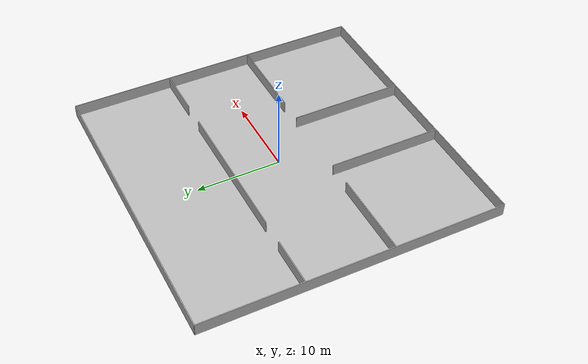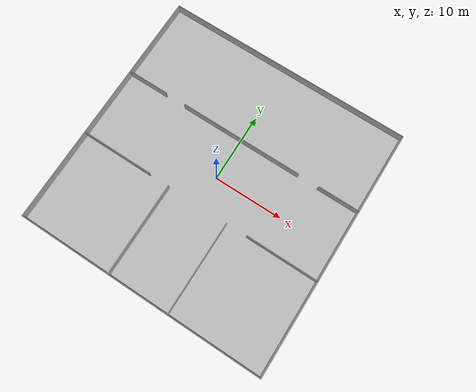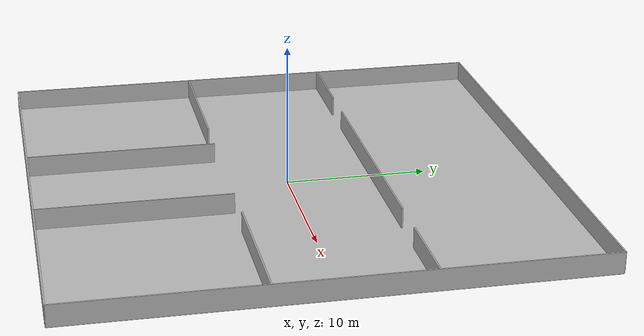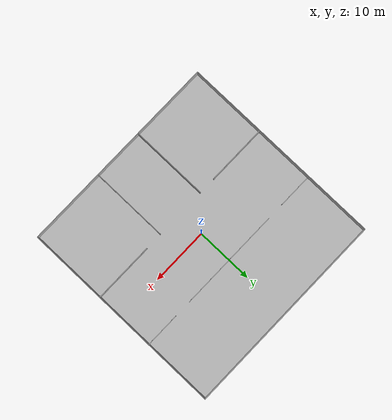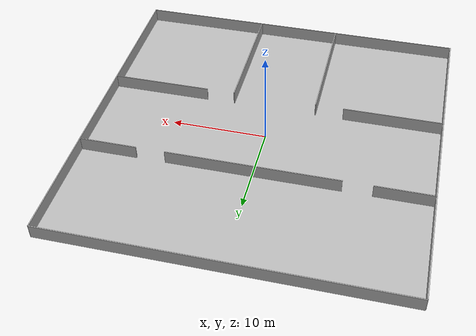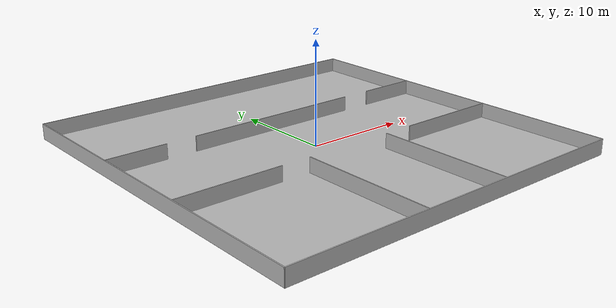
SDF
<?xml version="1.0" ?>
<sdf version="1.6">
  <world name="warehouse_world">

    <include>
      <uri>model://sun</uri>
    </include>

    <!-- FLOOR -->
    <model name="floor">
      <static>true</static>
      <link name="link">
        <collision name="collision">
          <geometry><box><size>36 36 0.1</size></box></geometry>
        </collision>
        <visual name="visual">
          <geometry><box><size>36 36 0.1</size></box></geometry>
        </visual>
      </link>
    </model>

    <!-- OUTER WALLS -->
    <model name="outer_walls">
      <static>true</static>

      <link name="north">
        <pose>0 18 0.75 0 0 0</pose>
        <collision name="c"><geometry><box><size>36 0.1 1.5</size></box></geometry></collision>
        <visual name="v"><geometry><box><size>36 0.1 1.5</size></box></geometry></visual>
      </link>

      <link name="south">
        <pose>0 -18 0.75 0 0 0</pose>
        <collision name="c"><geometry><box><size>36 0.1 1.5</size></box></geometry></collision>
        <visual name="v"><geometry><box><size>36 0.1 1.5</size></box></geometry></visual>
      </link>

      <link name="east">
        <pose>18 0 0.75 0 0 0</pose>
        <collision name="c"><geometry><box><size>0.1 36 1.5</size></box></geometry></collision>
        <visual name="v"><geometry><box><size>0.1 36 1.5</size></box></geometry></visual>
      </link>

      <link name="west">
        <pose>-18 0 0.75 0 0 0</pose>
        <collision name="c"><geometry><box><size>0.1 36 1.5</size></box></geometry></collision>
        <visual name="v"><geometry><box><size>0.1 36 1.5</size></box></geometry></visual>
      </link>

    </model>

    <!-- PARTITION ROW -->
    <model name="pr_wall_outer_left">
      <static>true</static>
      <pose>-15 6 0.75 0 0 0</pose>
      <link name="link">
        <collision name="c"><geometry><box><size>6 0.1 1.5</size></box></geometry></collision>
        <visual name="v"><geometry><box><size>6 0.1 1.5</size></box></geometry></visual>
      </link>
    </model>

    <model name="pr_wall_center">
      <static>true</static>
      <pose>0 6 0.75 0 0 0</pose>
      <link name="link">
        <collision name="c"><geometry><box><size>18 0.1 1.5</size></box></geometry></collision>
        <visual name="v"><geometry><box><size>18 0.1 1.5</size></box></geometry></visual>
      </link>
    </model>

    <model name="pr_wall_outer_right">
      <static>true</static>
      <pose>15 6 0.75 0 0 0</pose>
      <link name="link">
        <collision name="c"><geometry><box><size>6 0.1 1.5</size></box></geometry></collision>
        <visual name="v"><geometry><box><size>6 0.1 1.5</size></box></geometry></visual>
      </link>
    </model>

    <!-- FRONT LEFT ROOM -->
    <model name="fr_top_wall">
      <static>true</static>
      <pose>-12.75 -4.5 0.75 0 0 0</pose>
      <link name="link">
        <collision name="c"><geometry><box><size>10.5 0.1 1.5</size></box></geometry></collision>
        <visual name="v"><geometry><box><size>10.5 0.1 1.5</size></box></geometry></visual>
      </link>
    </model>

    <model name="fr_inner_wall">
      <static>true</static>
      <pose>-4.5 -11.25 0.75 0 0 0</pose>
      <link name="link">
        <collision name="c"><geometry><box><size>0.1 13.5 1.5</size></box></geometry></collision>
        <visual name="v"><geometry><box><size>0.1 13.5 1.5</size></box></geometry></visual>
      </link>
    </model>

    <!-- FRONT RIGHT ROOM -->
    <model name="sr_top_wall">
      <static>true</static>
      <pose>12.75 -4.5 0.75 0 0 0</pose>
      <link name="link">
        <collision name="c"><geometry><box><size>10.5 0.1 1.5</size></box></geometry></collision>
        <visual name="v"><geometry><box><size>10.5 0.1 1.5</size></box></geometry></visual>
      </link>
    </model>

    <model name="sr_inner_wall">
      <static>true</static>
      <pose>4.5 -11.25 0.75 0 0 0</pose>
      <link name="link">
        <collision name="c"><geometry><box><size>0.1 13.5 1.5</size></box></geometry></collision>
        <visual name="v"><geometry><box><size>0.1 13.5 1.5</size></box></geometry></visual>
      </link>
    </model>

  </world>
</sdf>
